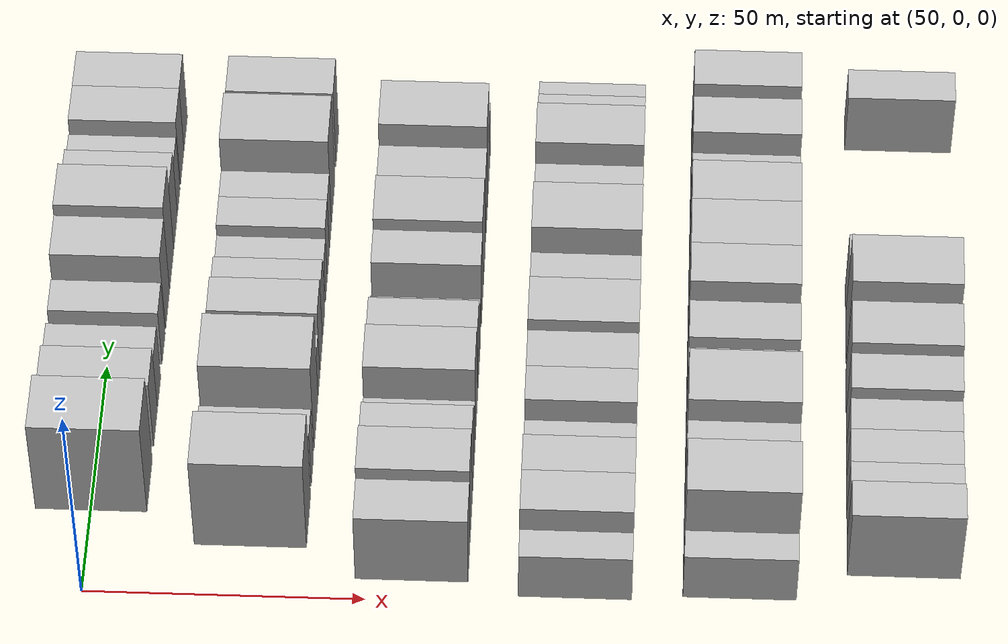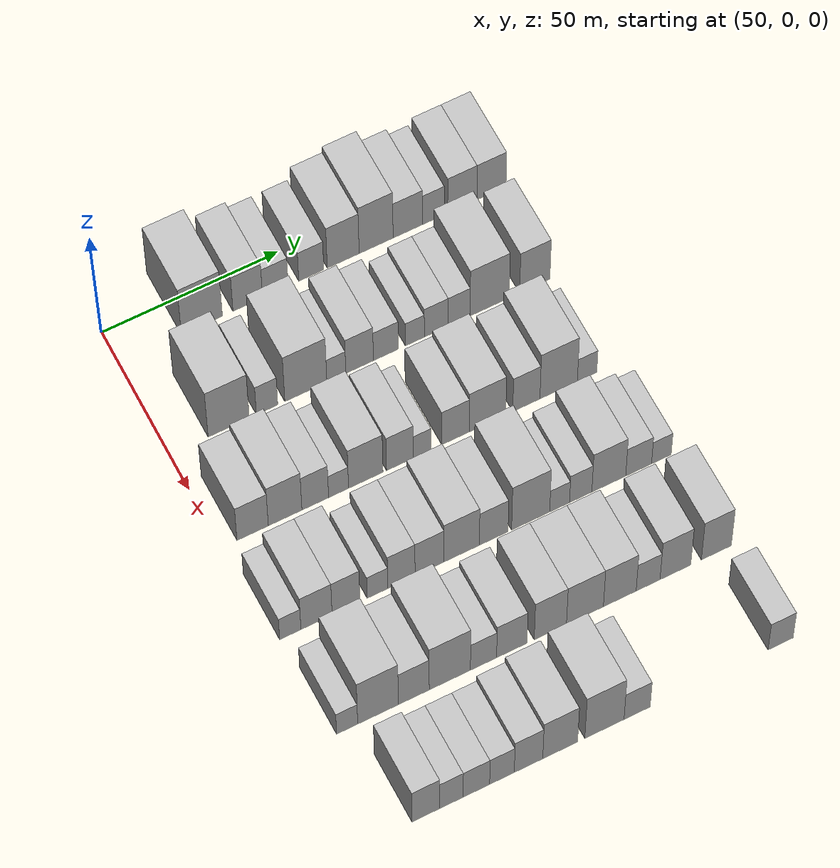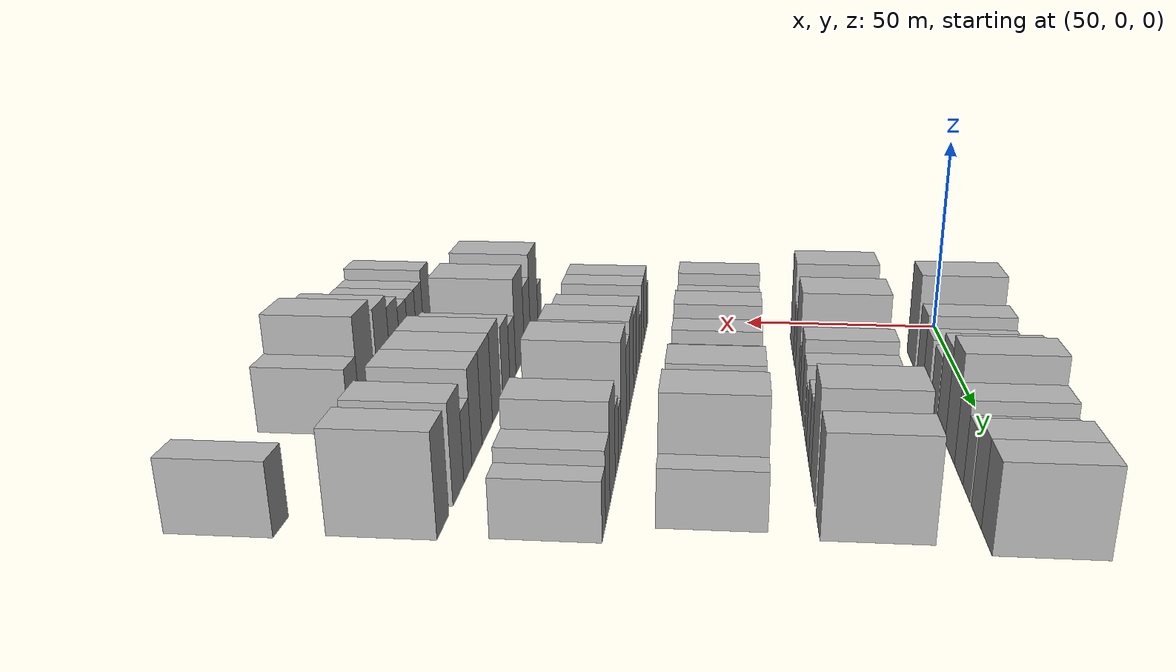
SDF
<sdf version="1.6">
 <world name="default">
  <model name="building_53">
   <static>1</static>
   <pose>50.0000 23.4272 0 0.000000 0.000000 0.000000</pose>
   <link name="link">
    <pose>0 0 12.00 0 0 0</pose>
    <collision name="collision"><geometry><box><size>20.0000 11.5989 24.0000</size></box></geometry></collision>
    <visual name="visual">
     <cast_shadows>0</cast_shadows>
     <geometry><box><size>20.0000 11.5989 24.0000</size></box></geometry>
     <material>
      <script>
       <uri>model://HANNAS_wall/materials/scripts</uri>
       <uri>model://HANNAS_wall/materials/textures</uri>
       <name>vrc/HANNAS_wall</name>
      </script>
     </material>
    </visual>
   </link>
  </model>
  <model name="building_54">
   <static>1</static>
   <pose>50.0000 36.4297 0 0.000000 0.000000 0.000000</pose>
   <link name="link">
    <pose>0 0 9.00 0 0 0</pose>
    <collision name="collision"><geometry><box><size>20.0000 8.4061 18.0000</size></box></geometry></collision>
    <visual name="visual">
     <cast_shadows>0</cast_shadows>
     <geometry><box><size>20.0000 8.4061 18.0000</size></box></geometry>
     <material>
      <script>
       <uri>model://HANNAS_wall/materials/scripts</uri>
       <uri>model://HANNAS_wall/materials/textures</uri>
       <name>vrc/HANNAS_wall</name>
      </script>
     </material>
    </visual>
   </link>
  </model>
  <model name="building_55">
   <static>1</static>
   <pose>50.0000 44.2950 0 0.000000 0.000000 0.000000</pose>
   <link name="link">
    <pose>0 0 7.50 0 0 0</pose>
    <collision name="collision"><geometry><box><size>20.0000 7.3245 15.0000</size></box></geometry></collision>
    <visual name="visual">
     <cast_shadows>0</cast_shadows>
     <geometry><box><size>20.0000 7.3245 15.0000</size></box></geometry>
     <material>
      <script>
       <uri>model://HANNAS_wall/materials/scripts</uri>
       <uri>model://HANNAS_wall/materials/textures</uri>
       <name>vrc/HANNAS_wall</name>
      </script>
     </material>
    </visual>
   </link>
  </model>
  <model name="building_56">
   <static>1</static>
   <pose>50.0000 54.5330 0 0.000000 0.000000 0.000000</pose>
   <link name="link">
    <pose>0 0 7.50 0 0 0</pose>
    <collision name="collision"><geometry><box><size>20.0000 7.1515 15.0000</size></box></geometry></collision>
    <visual name="visual">
     <cast_shadows>0</cast_shadows>
     <geometry><box><size>20.0000 7.1515 15.0000</size></box></geometry>
     <material>
      <script>
       <uri>model://HANNAS_wall/materials/scripts</uri>
       <uri>model://HANNAS_wall/materials/textures</uri>
       <name>vrc/HANNAS_wall</name>
      </script>
     </material>
    </visual>
   </link>
  </model>
  <model name="building_57">
   <static>1</static>
   <pose>50.0000 63.6788 0 0.000000 0.000000 0.000000</pose>
   <link name="link">
    <pose>0 0 10.50 0 0 0</pose>
    <collision name="collision"><geometry><box><size>20.0000 9.1401 21.0000</size></box></geometry></collision>
    <visual name="visual">
     <cast_shadows>0</cast_shadows>
     <geometry><box><size>20.0000 9.1401 21.0000</size></box></geometry>
     <material>
      <script>
       <uri>model://HANNAS_wall/materials/scripts</uri>
       <uri>model://HANNAS_wall/materials/textures</uri>
       <name>vrc/HANNAS_wall</name>
      </script>
     </material>
    </visual>
   </link>
  </model>
  <model name="building_58">
   <static>1</static>
   <pose>50.0000 73.1311 0 0.000000 0.000000 0.000000</pose>
   <link name="link">
    <pose>0 0 12.00 0 0 0</pose>
    <collision name="collision"><geometry><box><size>20.0000 9.7645 24.0000</size></box></geometry></collision>
    <visual name="visual">
     <cast_shadows>0</cast_shadows>
     <geometry><box><size>20.0000 9.7645 24.0000</size></box></geometry>
     <material>
      <script>
       <uri>model://HANNAS_wall/materials/scripts</uri>
       <uri>model://HANNAS_wall/materials/textures</uri>
       <name>vrc/HANNAS_wall</name>
      </script>
     </material>
    </visual>
   </link>
  </model>
  <model name="building_59">
   <static>1</static>
   <pose>50.0000 82.2472 0 0.000000 0.000000 0.000000</pose>
   <link name="link">
    <pose>0 0 9.00 0 0 0</pose>
    <collision name="collision"><geometry><box><size>20.0000 8.4677 18.0000</size></box></geometry></collision>
    <visual name="visual">
     <cast_shadows>0</cast_shadows>
     <geometry><box><size>20.0000 8.4677 18.0000</size></box></geometry>
     <material>
      <script>
       <uri>model://HANNAS_wall/materials/scripts</uri>
       <uri>model://HANNAS_wall/materials/textures</uri>
       <name>vrc/HANNAS_wall</name>
      </script>
     </material>
    </visual>
   </link>
  </model>
  <model name="building_60">
   <static>1</static>
   <pose>50.0000 89.6188 0 0.000000 0.000000 0.000000</pose>
   <link name="link">
    <pose>0 0 7.50 0 0 0</pose>
    <collision name="collision"><geometry><box><size>20.0000 6.2755 15.0000</size></box></geometry></collision>
    <visual name="visual">
     <cast_shadows>0</cast_shadows>
     <geometry><box><size>20.0000 6.2755 15.0000</size></box></geometry>
     <material>
      <script>
       <uri>model://HANNAS_wall/materials/scripts</uri>
       <uri>model://HANNAS_wall/materials/textures</uri>
       <name>vrc/HANNAS_wall</name>
      </script>
     </material>
    </visual>
   </link>
  </model>
  <model name="building_61">
   <static>1</static>
   <pose>50.0000 97.9870 0 0.000000 0.000000 0.000000</pose>
   <link name="link">
    <pose>0 0 9.00 0 0 0</pose>
    <collision name="collision"><geometry><box><size>20.0000 8.4609 18.0000</size></box></geometry></collision>
    <visual name="visual">
     <cast_shadows>0</cast_shadows>
     <geometry><box><size>20.0000 8.4609 18.0000</size></box></geometry>
     <material>
      <script>
       <uri>model://HANNAS_wall/materials/scripts</uri>
       <uri>model://HANNAS_wall/materials/textures</uri>
       <name>vrc/HANNAS_wall</name>
      </script>
     </material>
    </visual>
   </link>
  </model>
  <model name="building_62">
   <static>1</static>
   <pose>50.0000 106.4365 0 0.000000 0.000000 0.000000</pose>
   <link name="link">
    <pose>0 0 9.00 0 0 0</pose>
    <collision name="collision"><geometry><box><size>20.0000 8.4380 18.0000</size></box></geometry></collision>
    <visual name="visual">
     <cast_shadows>0</cast_shadows>
     <geometry><box><size>20.0000 8.4380 18.0000</size></box></geometry>
     <material>
      <script>
       <uri>model://HANNAS_wall/materials/scripts</uri>
       <uri>model://HANNAS_wall/materials/textures</uri>
       <name>vrc/HANNAS_wall</name>
      </script>
     </material>
    </visual>
   </link>
  </model>
  <model name="building_165">
   <static>1</static>
   <pose>79.0000 16.5833 0 0.000000 0.000000 0.000000</pose>
   <link name="link">
    <pose>0 0 12.00 0 0 0</pose>
    <collision name="collision"><geometry><box><size>20.0000 11.5537 24.0000</size></box></geometry></collision>
    <visual name="visual">
     <cast_shadows>0</cast_shadows>
     <geometry><box><size>20.0000 11.5537 24.0000</size></box></geometry>
     <material>
      <script>
       <uri>model://HANNAS_wall/materials/scripts</uri>
       <uri>model://HANNAS_wall/materials/textures</uri>
       <name>vrc/HANNAS_wall</name>
      </script>
     </material>
    </visual>
   </link>
  </model>
  <model name="building_166">
   <static>1</static>
   <pose>79.0000 27.3683 0 0.000000 0.000000 0.000000</pose>
   <link name="link">
    <pose>0 0 7.50 0 0 0</pose>
    <collision name="collision"><geometry><box><size>20.0000 6.0164 15.0000</size></box></geometry></collision>
    <visual name="visual">
     <cast_shadows>0</cast_shadows>
     <geometry><box><size>20.0000 6.0164 15.0000</size></box></geometry>
     <material>
      <script>
       <uri>model://HANNAS_wall/materials/scripts</uri>
       <uri>model://HANNAS_wall/materials/textures</uri>
       <name>vrc/HANNAS_wall</name>
      </script>
     </material>
    </visual>
   </link>
  </model>
  <model name="building_167">
   <static>1</static>
   <pose>79.0000 38.3132 0 0.000000 0.000000 0.000000</pose>
   <link name="link">
    <pose>0 0 12.00 0 0 0</pose>
    <collision name="collision"><geometry><box><size>20.0000 11.8733 24.0000</size></box></geometry></collision>
    <visual name="visual">
     <cast_shadows>0</cast_shadows>
     <geometry><box><size>20.0000 11.8733 24.0000</size></box></geometry>
     <material>
      <script>
       <uri>model://HANNAS_wall/materials/scripts</uri>
       <uri>model://HANNAS_wall/materials/textures</uri>
       <name>vrc/HANNAS_wall</name>
      </script>
     </material>
    </visual>
   </link>
  </model>
  <model name="building_168">
   <static>1</static>
   <pose>79.0000 46.9376 0 0.000000 0.000000 0.000000</pose>
   <link name="link">
    <pose>0 0 6.00 0 0 0</pose>
    <collision name="collision"><geometry><box><size>20.0000 5.3756 12.0000</size></box></geometry></collision>
    <visual name="visual">
     <cast_shadows>0</cast_shadows>
     <geometry><box><size>20.0000 5.3756 12.0000</size></box></geometry>
     <material>
      <script>
       <uri>model://HANNAS_wall/materials/scripts</uri>
       <uri>model://HANNAS_wall/materials/textures</uri>
       <name>vrc/HANNAS_wall</name>
      </script>
     </material>
    </visual>
   </link>
  </model>
  <model name="building_169">
   <static>1</static>
   <pose>79.0000 53.5484 0 0.000000 0.000000 0.000000</pose>
   <link name="link">
    <pose>0 0 9.00 0 0 0</pose>
    <collision name="collision"><geometry><box><size>20.0000 7.8459 18.0000</size></box></geometry></collision>
    <visual name="visual">
     <cast_shadows>0</cast_shadows>
     <geometry><box><size>20.0000 7.8459 18.0000</size></box></geometry>
     <material>
      <script>
       <uri>model://HANNAS_wall/materials/scripts</uri>
       <uri>model://HANNAS_wall/materials/textures</uri>
       <name>vrc/HANNAS_wall</name>
      </script>
     </material>
    </visual>
   </link>
  </model>
  <model name="building_170">
   <static>1</static>
   <pose>79.0000 61.0159 0 0.000000 0.000000 0.000000</pose>
   <link name="link">
    <pose>0 0 7.50 0 0 0</pose>
    <collision name="collision"><geometry><box><size>20.0000 7.0892 15.0000</size></box></geometry></collision>
    <visual name="visual">
     <cast_shadows>0</cast_shadows>
     <geometry><box><size>20.0000 7.0892 15.0000</size></box></geometry>
     <material>
      <script>
       <uri>model://HANNAS_wall/materials/scripts</uri>
       <uri>model://HANNAS_wall/materials/textures</uri>
       <name>vrc/HANNAS_wall</name>
      </script>
     </material>
    </visual>
   </link>
  </model>
  <model name="building_171">
   <static>1</static>
   <pose>79.0000 69.2675 0 0.000000 0.000000 0.000000</pose>
   <link name="link">
    <pose>0 0 6.00 0 0 0</pose>
    <collision name="collision"><geometry><box><size>20.0000 5.4140 12.0000</size></box></geometry></collision>
    <visual name="visual">
     <cast_shadows>0</cast_shadows>
     <geometry><box><size>20.0000 5.4140 12.0000</size></box></geometry>
     <material>
      <script>
       <uri>model://HANNAS_wall/materials/scripts</uri>
       <uri>model://HANNAS_wall/materials/textures</uri>
       <name>vrc/HANNAS_wall</name>
      </script>
     </material>
    </visual>
   </link>
  </model>
  <model name="building_172">
   <static>1</static>
   <pose>79.0000 75.3953 0 0.000000 0.000000 0.000000</pose>
   <link name="link">
    <pose>0 0 7.50 0 0 0</pose>
    <collision name="collision"><geometry><box><size>20.0000 6.8417 15.0000</size></box></geometry></collision>
    <visual name="visual">
     <cast_shadows>0</cast_shadows>
     <geometry><box><size>20.0000 6.8417 15.0000</size></box></geometry>
     <material>
      <script>
       <uri>model://HANNAS_wall/materials/scripts</uri>
       <uri>model://HANNAS_wall/materials/textures</uri>
       <name>vrc/HANNAS_wall</name>
      </script>
     </material>
    </visual>
   </link>
  </model>
  <model name="building_173">
   <static>1</static>
   <pose>79.0000 81.9405 0 0.000000 0.000000 0.000000</pose>
   <link name="link">
    <pose>0 0 7.50 0 0 0</pose>
    <collision name="collision"><geometry><box><size>20.0000 6.2487 15.0000</size></box></geometry></collision>
    <visual name="visual">
     <cast_shadows>0</cast_shadows>
     <geometry><box><size>20.0000 6.2487 15.0000</size></box></geometry>
     <material>
      <script>
       <uri>model://HANNAS_wall/materials/scripts</uri>
       <uri>model://HANNAS_wall/materials/textures</uri>
       <name>vrc/HANNAS_wall</name>
      </script>
     </material>
    </visual>
   </link>
  </model>
  <model name="building_174">
   <static>1</static>
   <pose>79.0000 90.6792 0 0.000000 0.000000 0.000000</pose>
   <link name="link">
    <pose>0 0 12.00 0 0 0</pose>
    <collision name="collision"><geometry><box><size>20.0000 11.2288 24.0000</size></box></geometry></collision>
    <visual name="visual">
     <cast_shadows>0</cast_shadows>
     <geometry><box><size>20.0000 11.2288 24.0000</size></box></geometry>
     <material>
      <script>
       <uri>model://HANNAS_wall/materials/scripts</uri>
       <uri>model://HANNAS_wall/materials/textures</uri>
       <name>vrc/HANNAS_wall</name>
      </script>
     </material>
    </visual>
   </link>
  </model>
  <model name="building_175">
   <static>1</static>
   <pose>79.0000 103.6485 0 0.000000 0.000000 0.000000</pose>
   <link name="link">
    <pose>0 0 10.50 0 0 0</pose>
    <collision name="collision"><geometry><box><size>20.0000 8.7099 21.0000</size></box></geometry></collision>
    <visual name="visual">
     <cast_shadows>0</cast_shadows>
     <geometry><box><size>20.0000 8.7099 21.0000</size></box></geometry>
     <material>
      <script>
       <uri>model://HANNAS_wall/materials/scripts</uri>
       <uri>model://HANNAS_wall/materials/textures</uri>
       <name>vrc/HANNAS_wall</name>
      </script>
     </material>
    </visual>
   </link>
  </model>
  <model name="building_283">
   <static>1</static>
   <pose>108.0000 8.7991 0 0.000000 0.000000 0.000000</pose>
   <link name="link">
    <pose>0 0 9.00 0 0 0</pose>
    <collision name="collision"><geometry><box><size>20.0000 8.7271 18.0000</size></box></geometry></collision>
    <visual name="visual">
     <cast_shadows>0</cast_shadows>
     <geometry><box><size>20.0000 8.7271 18.0000</size></box></geometry>
     <material>
      <script>
       <uri>model://HANNAS_wall/materials/scripts</uri>
       <uri>model://HANNAS_wall/materials/textures</uri>
       <name>vrc/HANNAS_wall</name>
      </script>
     </material>
    </visual>
   </link>
  </model>
  <model name="building_284">
   <static>1</static>
   <pose>108.0000 17.8478 0 0.000000 0.000000 0.000000</pose>
   <link name="link">
    <pose>0 0 10.50 0 0 0</pose>
    <collision name="collision"><geometry><box><size>20.0000 9.3703 21.0000</size></box></geometry></collision>
    <visual name="visual">
     <cast_shadows>0</cast_shadows>
     <geometry><box><size>20.0000 9.3703 21.0000</size></box></geometry>
     <material>
      <script>
       <uri>model://HANNAS_wall/materials/scripts</uri>
       <uri>model://HANNAS_wall/materials/textures</uri>
       <name>vrc/HANNAS_wall</name>
      </script>
     </material>
    </visual>
   </link>
  </model>
  <model name="building_285">
   <static>1</static>
   <pose>108.0000 26.2696 0 0.000000 0.000000 0.000000</pose>
   <link name="link">
    <pose>0 0 9.00 0 0 0</pose>
    <collision name="collision"><geometry><box><size>20.0000 7.4734 18.0000</size></box></geometry></collision>
    <visual name="visual">
     <cast_shadows>0</cast_shadows>
     <geometry><box><size>20.0000 7.4734 18.0000</size></box></geometry>
     <material>
      <script>
       <uri>model://HANNAS_wall/materials/scripts</uri>
       <uri>model://HANNAS_wall/materials/textures</uri>
       <name>vrc/HANNAS_wall</name>
      </script>
     </material>
    </visual>
   </link>
  </model>
  <model name="building_286">
   <static>1</static>
   <pose>108.0000 32.7994 0 0.000000 0.000000 0.000000</pose>
   <link name="link">
    <pose>0 0 6.00 0 0 0</pose>
    <collision name="collision"><geometry><box><size>20.0000 5.5861 12.0000</size></box></geometry></collision>
    <visual name="visual">
     <cast_shadows>0</cast_shadows>
     <geometry><box><size>20.0000 5.5861 12.0000</size></box></geometry>
     <material>
      <script>
       <uri>model://HANNAS_wall/materials/scripts</uri>
       <uri>model://HANNAS_wall/materials/textures</uri>
       <name>vrc/HANNAS_wall</name>
      </script>
     </material>
    </visual>
   </link>
  </model>
  <model name="building_287">
   <static>1</static>
   <pose>108.0000 40.4298 0 0.000000 0.000000 0.000000</pose>
   <link name="link">
    <pose>0 0 10.50 0 0 0</pose>
    <collision name="collision"><geometry><box><size>20.0000 9.6749 21.0000</size></box></geometry></collision>
    <visual name="visual">
     <cast_shadows>0</cast_shadows>
     <geometry><box><size>20.0000 9.6749 21.0000</size></box></geometry>
     <material>
      <script>
       <uri>model://HANNAS_wall/materials/scripts</uri>
       <uri>model://HANNAS_wall/materials/textures</uri>
       <name>vrc/HANNAS_wall</name>
      </script>
     </material>
    </visual>
   </link>
  </model>
  <model name="building_288">
   <static>1</static>
   <pose>108.0000 50.0367 0 0.000000 0.000000 0.000000</pose>
   <link name="link">
    <pose>0 0 9.00 0 0 0</pose>
    <collision name="collision"><geometry><box><size>20.0000 7.5389 18.0000</size></box></geometry></collision>
    <visual name="visual">
     <cast_shadows>0</cast_shadows>
     <geometry><box><size>20.0000 7.5389 18.0000</size></box></geometry>
     <material>
      <script>
       <uri>model://HANNAS_wall/materials/scripts</uri>
       <uri>model://HANNAS_wall/materials/textures</uri>
       <name>vrc/HANNAS_wall</name>
      </script>
     </material>
    </visual>
   </link>
  </model>
  <model name="building_289">
   <static>1</static>
   <pose>108.0000 56.3267 0 0.000000 0.000000 0.000000</pose>
   <link name="link">
    <pose>0 0 6.00 0 0 0</pose>
    <collision name="collision"><geometry><box><size>20.0000 5.0412 12.0000</size></box></geometry></collision>
    <visual name="visual">
     <cast_shadows>0</cast_shadows>
     <geometry><box><size>20.0000 5.0412 12.0000</size></box></geometry>
     <material>
      <script>
       <uri>model://HANNAS_wall/materials/scripts</uri>
       <uri>model://HANNAS_wall/materials/textures</uri>
       <name>vrc/HANNAS_wall</name>
      </script>
     </material>
    </visual>
   </link>
  </model>
  <model name="building_290">
   <static>1</static>
   <pose>108.0000 65.7313 0 0.000000 0.000000 0.000000</pose>
   <link name="link">
    <pose>0 0 9.00 0 0 0</pose>
    <collision name="collision"><geometry><box><size>20.0000 7.7679 18.0000</size></box></geometry></collision>
    <visual name="visual">
     <cast_shadows>0</cast_shadows>
     <geometry><box><size>20.0000 7.7679 18.0000</size></box></geometry>
     <material>
      <script>
       <uri>model://HANNAS_wall/materials/scripts</uri>
       <uri>model://HANNAS_wall/materials/textures</uri>
       <name>vrc/HANNAS_wall</name>
      </script>
     </material>
    </visual>
   </link>
  </model>
  <model name="building_291">
   <static>1</static>
   <pose>108.0000 74.8093 0 0.000000 0.000000 0.000000</pose>
   <link name="link">
    <pose>0 0 10.50 0 0 0</pose>
    <collision name="collision"><geometry><box><size>20.0000 10.3881 21.0000</size></box></geometry></collision>
    <visual name="visual">
     <cast_shadows>0</cast_shadows>
     <geometry><box><size>20.0000 10.3881 21.0000</size></box></geometry>
     <material>
      <script>
       <uri>model://HANNAS_wall/materials/scripts</uri>
       <uri>model://HANNAS_wall/materials/textures</uri>
       <name>vrc/HANNAS_wall</name>
      </script>
     </material>
    </visual>
   </link>
  </model>
  <model name="building_292">
   <static>1</static>
   <pose>108.0000 85.8697 0 0.000000 0.000000 0.000000</pose>
   <link name="link">
    <pose>0 0 9.00 0 0 0</pose>
    <collision name="collision"><geometry><box><size>20.0000 7.7328 18.0000</size></box></geometry></collision>
    <visual name="visual">
     <cast_shadows>0</cast_shadows>
     <geometry><box><size>20.0000 7.7328 18.0000</size></box></geometry>
     <material>
      <script>
       <uri>model://HANNAS_wall/materials/scripts</uri>
       <uri>model://HANNAS_wall/materials/textures</uri>
       <name>vrc/HANNAS_wall</name>
      </script>
     </material>
    </visual>
   </link>
  </model>
  <model name="building_293">
   <static>1</static>
   <pose>108.0000 95.0829 0 0.000000 0.000000 0.000000</pose>
   <link name="link">
    <pose>0 0 12.00 0 0 0</pose>
    <collision name="collision"><geometry><box><size>20.0000 10.6936 24.0000</size></box></geometry></collision>
    <visual name="visual">
     <cast_shadows>0</cast_shadows>
     <geometry><box><size>20.0000 10.6936 24.0000</size></box></geometry>
     <material>
      <script>
       <uri>model://HANNAS_wall/materials/scripts</uri>
       <uri>model://HANNAS_wall/materials/textures</uri>
       <name>vrc/HANNAS_wall</name>
      </script>
     </material>
    </visual>
   </link>
  </model>
  <model name="building_294">
   <static>1</static>
   <pose>108.0000 103.2182 0 0.000000 0.000000 0.000000</pose>
   <link name="link">
    <pose>0 0 6.00 0 0 0</pose>
    <collision name="collision"><geometry><box><size>20.0000 5.5770 12.0000</size></box></geometry></collision>
    <visual name="visual">
     <cast_shadows>0</cast_shadows>
     <geometry><box><size>20.0000 5.5770 12.0000</size></box></geometry>
     <material>
      <script>
       <uri>model://HANNAS_wall/materials/scripts</uri>
       <uri>model://HANNAS_wall/materials/textures</uri>
       <name>vrc/HANNAS_wall</name>
      </script>
     </material>
    </visual>
   </link>
  </model>
  <model name="building_403">
   <static>1</static>
   <pose>137.0000 4.6618 0 0.000000 0.000000 0.000000</pose>
   <link name="link">
    <pose>0 0 6.00 0 0 0</pose>
    <collision name="collision"><geometry><box><size>20.0000 5.8761 12.0000</size></box></geometry></collision>
    <visual name="visual">
     <cast_shadows>0</cast_shadows>
     <geometry><box><size>20.0000 5.8761 12.0000</size></box></geometry>
     <material>
      <script>
       <uri>model://HANNAS_wall/materials/scripts</uri>
       <uri>model://HANNAS_wall/materials/textures</uri>
       <name>vrc/HANNAS_wall</name>
      </script>
     </material>
    </visual>
   </link>
  </model>
  <model name="building_404">
   <static>1</static>
   <pose>137.0000 11.9137 0 0.000000 0.000000 0.000000</pose>
   <link name="link">
    <pose>0 0 9.00 0 0 0</pose>
    <collision name="collision"><geometry><box><size>20.0000 8.6278 18.0000</size></box></geometry></collision>
    <visual name="visual">
     <cast_shadows>0</cast_shadows>
     <geometry><box><size>20.0000 8.6278 18.0000</size></box></geometry>
     <material>
      <script>
       <uri>model://HANNAS_wall/materials/scripts</uri>
       <uri>model://HANNAS_wall/materials/textures</uri>
       <name>vrc/HANNAS_wall</name>
      </script>
     </material>
    </visual>
   </link>
  </model>
  <model name="building_405">
   <static>1</static>
   <pose>137.0000 20.0993 0 0.000000 0.000000 0.000000</pose>
   <link name="link">
    <pose>0 0 9.00 0 0 0</pose>
    <collision name="collision"><geometry><box><size>20.0000 7.7434 18.0000</size></box></geometry></collision>
    <visual name="visual">
     <cast_shadows>0</cast_shadows>
     <geometry><box><size>20.0000 7.7434 18.0000</size></box></geometry>
     <material>
      <script>
       <uri>model://HANNAS_wall/materials/scripts</uri>
       <uri>model://HANNAS_wall/materials/textures</uri>
       <name>vrc/HANNAS_wall</name>
      </script>
     </material>
    </visual>
   </link>
  </model>
  <model name="building_406">
   <static>1</static>
   <pose>137.0000 28.8416 0 0.000000 0.000000 0.000000</pose>
   <link name="link">
    <pose>0 0 6.00 0 0 0</pose>
    <collision name="collision"><geometry><box><size>20.0000 5.7413 12.0000</size></box></geometry></collision>
    <visual name="visual">
     <cast_shadows>0</cast_shadows>
     <geometry><box><size>20.0000 5.7413 12.0000</size></box></geometry>
     <material>
      <script>
       <uri>model://HANNAS_wall/materials/scripts</uri>
       <uri>model://HANNAS_wall/materials/textures</uri>
       <name>vrc/HANNAS_wall</name>
      </script>
     </material>
    </visual>
   </link>
  </model>
  <model name="building_407">
   <static>1</static>
   <pose>137.0000 35.5147 0 0.000000 0.000000 0.000000</pose>
   <link name="link">
    <pose>0 0 9.00 0 0 0</pose>
    <collision name="collision"><geometry><box><size>20.0000 7.6049 18.0000</size></box></geometry></collision>
    <visual name="visual">
     <cast_shadows>0</cast_shadows>
     <geometry><box><size>20.0000 7.6049 18.0000</size></box></geometry>
     <material>
      <script>
       <uri>model://HANNAS_wall/materials/scripts</uri>
       <uri>model://HANNAS_wall/materials/textures</uri>
       <name>vrc/HANNAS_wall</name>
      </script>
     </material>
    </visual>
   </link>
  </model>
  <model name="building_408">
   <static>1</static>
   <pose>137.0000 43.3640 0 0.000000 0.000000 0.000000</pose>
   <link name="link">
    <pose>0 0 9.00 0 0 0</pose>
    <collision name="collision"><geometry><box><size>20.0000 8.0937 18.0000</size></box></geometry></collision>
    <visual name="visual">
     <cast_shadows>0</cast_shadows>
     <geometry><box><size>20.0000 8.0937 18.0000</size></box></geometry>
     <material>
      <script>
       <uri>model://HANNAS_wall/materials/scripts</uri>
       <uri>model://HANNAS_wall/materials/textures</uri>
       <name>vrc/HANNAS_wall</name>
      </script>
     </material>
    </visual>
   </link>
  </model>
  <model name="building_409">
   <static>1</static>
   <pose>137.0000 52.3573 0 0.000000 0.000000 0.000000</pose>
   <link name="link">
    <pose>0 0 10.50 0 0 0</pose>
    <collision name="collision"><geometry><box><size>20.0000 9.8931 21.0000</size></box></geometry></collision>
    <visual name="visual">
     <cast_shadows>0</cast_shadows>
     <geometry><box><size>20.0000 9.8931 21.0000</size></box></geometry>
     <material>
      <script>
       <uri>model://HANNAS_wall/materials/scripts</uri>
       <uri>model://HANNAS_wall/materials/textures</uri>
       <name>vrc/HANNAS_wall</name>
      </script>
     </material>
    </visual>
   </link>
  </model>
  <model name="building_410">
   <static>1</static>
   <pose>137.0000 61.3296 0 0.000000 0.000000 0.000000</pose>
   <link name="link">
    <pose>0 0 9.00 0 0 0</pose>
    <collision name="collision"><geometry><box><size>20.0000 8.0513 18.0000</size></box></geometry></collision>
    <visual name="visual">
     <cast_shadows>0</cast_shadows>
     <geometry><box><size>20.0000 8.0513 18.0000</size></box></geometry>
     <material>
      <script>
       <uri>model://HANNAS_wall/materials/scripts</uri>
       <uri>model://HANNAS_wall/materials/textures</uri>
       <name>vrc/HANNAS_wall</name>
      </script>
     </material>
    </visual>
   </link>
  </model>
  <model name="building_411">
   <static>1</static>
   <pose>137.0000 71.7255 0 0.000000 0.000000 0.000000</pose>
   <link name="link">
    <pose>0 0 12.00 0 0 0</pose>
    <collision name="collision"><geometry><box><size>20.0000 10.7406 24.0000</size></box></geometry></collision>
    <visual name="visual">
     <cast_shadows>0</cast_shadows>
     <geometry><box><size>20.0000 10.7406 24.0000</size></box></geometry>
     <material>
      <script>
       <uri>model://HANNAS_wall/materials/scripts</uri>
       <uri>model://HANNAS_wall/materials/textures</uri>
       <name>vrc/HANNAS_wall</name>
      </script>
     </material>
    </visual>
   </link>
  </model>
  <model name="building_412">
   <static>1</static>
   <pose>137.0000 79.8958 0 0.000000 0.000000 0.000000</pose>
   <link name="link">
    <pose>0 0 6.00 0 0 0</pose>
    <collision name="collision"><geometry><box><size>20.0000 5.6000 12.0000</size></box></geometry></collision>
    <visual name="visual">
     <cast_shadows>0</cast_shadows>
     <geometry><box><size>20.0000 5.6000 12.0000</size></box></geometry>
     <material>
      <script>
       <uri>model://HANNAS_wall/materials/scripts</uri>
       <uri>model://HANNAS_wall/materials/textures</uri>
       <name>vrc/HANNAS_wall</name>
      </script>
     </material>
    </visual>
   </link>
  </model>
  <model name="building_413">
   <static>1</static>
   <pose>137.0000 85.8580 0 0.000000 0.000000 0.000000</pose>
   <link name="link">
    <pose>0 0 7.50 0 0 0</pose>
    <collision name="collision"><geometry><box><size>20.0000 6.3245 15.0000</size></box></geometry></collision>
    <visual name="visual">
     <cast_shadows>0</cast_shadows>
     <geometry><box><size>20.0000 6.3245 15.0000</size></box></geometry>
     <material>
      <script>
       <uri>model://HANNAS_wall/materials/scripts</uri>
       <uri>model://HANNAS_wall/materials/textures</uri>
       <name>vrc/HANNAS_wall</name>
      </script>
     </material>
    </visual>
   </link>
  </model>
  <model name="building_414">
   <static>1</static>
   <pose>137.0000 93.8316 0 0.000000 0.000000 0.000000</pose>
   <link name="link">
    <pose>0 0 10.50 0 0 0</pose>
    <collision name="collision"><geometry><box><size>20.0000 9.6228 21.0000</size></box></geometry></collision>
    <visual name="visual">
     <cast_shadows>0</cast_shadows>
     <geometry><box><size>20.0000 9.6228 21.0000</size></box></geometry>
     <material>
      <script>
       <uri>model://HANNAS_wall/materials/scripts</uri>
       <uri>model://HANNAS_wall/materials/textures</uri>
       <name>vrc/HANNAS_wall</name>
      </script>
     </material>
    </visual>
   </link>
  </model>
  <model name="building_415">
   <static>1</static>
   <pose>137.0000 102.3237 0 0.000000 0.000000 0.000000</pose>
   <link name="link">
    <pose>0 0 7.50 0 0 0</pose>
    <collision name="collision"><geometry><box><size>20.0000 7.3614 15.0000</size></box></geometry></collision>
    <visual name="visual">
     <cast_shadows>0</cast_shadows>
     <geometry><box><size>20.0000 7.3614 15.0000</size></box></geometry>
     <material>
      <script>
       <uri>model://HANNAS_wall/materials/scripts</uri>
       <uri>model://HANNAS_wall/materials/textures</uri>
       <name>vrc/HANNAS_wall</name>
      </script>
     </material>
    </visual>
   </link>
  </model>
  <model name="building_416">
   <static>1</static>
   <pose>137.0000 108.8036 0 0.000000 0.000000 0.000000</pose>
   <link name="link">
    <pose>0 0 6.00 0 0 0</pose>
    <collision name="collision"><geometry><box><size>20.0000 5.5985 12.0000</size></box></geometry></collision>
    <visual name="visual">
     <cast_shadows>0</cast_shadows>
     <geometry><box><size>20.0000 5.5985 12.0000</size></box></geometry>
     <material>
      <script>
       <uri>model://HANNAS_wall/materials/scripts</uri>
       <uri>model://HANNAS_wall/materials/textures</uri>
       <name>vrc/HANNAS_wall</name>
      </script>
     </material>
    </visual>
   </link>
  </model>
  <model name="building_518">
   <static>1</static>
   <pose>166.0000 5.5942 0 0.000000 0.000000 0.000000</pose>
   <link name="link">
    <pose>0 0 6.00 0 0 0</pose>
    <collision name="collision"><geometry><box><size>20.0000 5.7966 12.0000</size></box></geometry></collision>
    <visual name="visual">
     <cast_shadows>0</cast_shadows>
     <geometry><box><size>20.0000 5.7966 12.0000</size></box></geometry>
     <material>
      <script>
       <uri>model://HANNAS_wall/materials/scripts</uri>
       <uri>model://HANNAS_wall/materials/textures</uri>
       <name>vrc/HANNAS_wall</name>
      </script>
     </material>
    </visual>
   </link>
  </model>
  <model name="building_519">
   <static>1</static>
   <pose>166.0000 14.0956 0 0.000000 0.000000 0.000000</pose>
   <link name="link">
    <pose>0 0 12.00 0 0 0</pose>
    <collision name="collision"><geometry><box><size>20.0000 11.2062 24.0000</size></box></geometry></collision>
    <visual name="visual">
     <cast_shadows>0</cast_shadows>
     <geometry><box><size>20.0000 11.2062 24.0000</size></box></geometry>
     <material>
      <script>
       <uri>model://HANNAS_wall/materials/scripts</uri>
       <uri>model://HANNAS_wall/materials/textures</uri>
       <name>vrc/HANNAS_wall</name>
      </script>
     </material>
    </visual>
   </link>
  </model>
  <model name="building_520">
   <static>1</static>
   <pose>166.0000 23.9539 0 0.000000 0.000000 0.000000</pose>
   <link name="link">
    <pose>0 0 9.00 0 0 0</pose>
    <collision name="collision"><geometry><box><size>20.0000 8.5105 18.0000</size></box></geometry></collision>
    <visual name="visual">
     <cast_shadows>0</cast_shadows>
     <geometry><box><size>20.0000 8.5105 18.0000</size></box></geometry>
     <material>
      <script>
       <uri>model://HANNAS_wall/materials/scripts</uri>
       <uri>model://HANNAS_wall/materials/textures</uri>
       <name>vrc/HANNAS_wall</name>
      </script>
     </material>
    </visual>
   </link>
  </model>
  <model name="building_521">
   <static>1</static>
   <pose>166.0000 33.9065 0 0.000000 0.000000 0.000000</pose>
   <link name="link">
    <pose>0 0 12.00 0 0 0</pose>
    <collision name="collision"><geometry><box><size>20.0000 11.3946 24.0000</size></box></geometry></collision>
    <visual name="visual">
     <cast_shadows>0</cast_shadows>
     <geometry><box><size>20.0000 11.3946 24.0000</size></box></geometry>
     <material>
      <script>
       <uri>model://HANNAS_wall/materials/scripts</uri>
       <uri>model://HANNAS_wall/materials/textures</uri>
       <name>vrc/HANNAS_wall</name>
      </script>
     </material>
    </visual>
   </link>
  </model>
  <model name="building_522">
   <static>1</static>
   <pose>166.0000 43.2404 0 0.000000 0.000000 0.000000</pose>
   <link name="link">
    <pose>0 0 7.50 0 0 0</pose>
    <collision name="collision"><geometry><box><size>20.0000 7.2733 15.0000</size></box></geometry></collision>
    <visual name="visual">
     <cast_shadows>0</cast_shadows>
     <geometry><box><size>20.0000 7.2733 15.0000</size></box></geometry>
     <material>
      <script>
       <uri>model://HANNAS_wall/materials/scripts</uri>
       <uri>model://HANNAS_wall/materials/textures</uri>
       <name>vrc/HANNAS_wall</name>
      </script>
     </material>
    </visual>
   </link>
  </model>
  <model name="building_523">
   <static>1</static>
   <pose>166.0000 51.1141 0 0.000000 0.000000 0.000000</pose>
   <link name="link">
    <pose>0 0 9.00 0 0 0</pose>
    <collision name="collision"><geometry><box><size>20.0000 8.4742 18.0000</size></box></geometry></collision>
    <visual name="visual">
     <cast_shadows>0</cast_shadows>
     <geometry><box><size>20.0000 8.4742 18.0000</size></box></geometry>
     <material>
      <script>
       <uri>model://HANNAS_wall/materials/scripts</uri>
       <uri>model://HANNAS_wall/materials/textures</uri>
       <name>vrc/HANNAS_wall</name>
      </script>
     </material>
    </visual>
   </link>
  </model>
  <model name="building_524">
   <static>1</static>
   <pose>166.0000 61.8561 0 0.000000 0.000000 0.000000</pose>
   <link name="link">
    <pose>0 0 10.50 0 0 0</pose>
    <collision name="collision"><geometry><box><size>20.0000 9.0097 21.0000</size></box></geometry></collision>
    <visual name="visual">
     <cast_shadows>0</cast_shadows>
     <geometry><box><size>20.0000 9.0097 21.0000</size></box></geometry>
     <material>
      <script>
       <uri>model://HANNAS_wall/materials/scripts</uri>
       <uri>model://HANNAS_wall/materials/textures</uri>
       <name>vrc/HANNAS_wall</name>
      </script>
     </material>
    </visual>
   </link>
  </model>
  <model name="building_525">
   <static>1</static>
   <pose>166.0000 71.5371 0 0.000000 0.000000 0.000000</pose>
   <link name="link">
    <pose>0 0 10.50 0 0 0</pose>
    <collision name="collision"><geometry><box><size>20.0000 10.3523 21.0000</size></box></geometry></collision>
    <visual name="visual">
     <cast_shadows>0</cast_shadows>
     <geometry><box><size>20.0000 10.3523 21.0000</size></box></geometry>
     <material>
      <script>
       <uri>model://HANNAS_wall/materials/scripts</uri>
       <uri>model://HANNAS_wall/materials/textures</uri>
       <name>vrc/HANNAS_wall</name>
      </script>
     </material>
    </visual>
   </link>
  </model>
  <model name="building_526">
   <static>1</static>
   <pose>166.0000 81.3130 0 0.000000 0.000000 0.000000</pose>
   <link name="link">
    <pose>0 0 10.50 0 0 0</pose>
    <collision name="collision"><geometry><box><size>20.0000 9.1996 21.0000</size></box></geometry></collision>
    <visual name="visual">
     <cast_shadows>0</cast_shadows>
     <geometry><box><size>20.0000 9.1996 21.0000</size></box></geometry>
     <material>
      <script>
       <uri>model://HANNAS_wall/materials/scripts</uri>
       <uri>model://HANNAS_wall/materials/textures</uri>
       <name>vrc/HANNAS_wall</name>
      </script>
     </material>
    </visual>
   </link>
  </model>
  <model name="building_527">
   <static>1</static>
   <pose>166.0000 89.2805 0 0.000000 0.000000 0.000000</pose>
   <link name="link">
    <pose>0 0 7.50 0 0 0</pose>
    <collision name="collision"><geometry><box><size>20.0000 6.7354 15.0000</size></box></geometry></collision>
    <visual name="visual">
     <cast_shadows>0</cast_shadows>
     <geometry><box><size>20.0000 6.7354 15.0000</size></box></geometry>
     <material>
      <script>
       <uri>model://HANNAS_wall/materials/scripts</uri>
       <uri>model://HANNAS_wall/materials/textures</uri>
       <name>vrc/HANNAS_wall</name>
      </script>
     </material>
    </visual>
   </link>
  </model>
  <model name="building_528">
   <static>1</static>
   <pose>166.0000 96.9867 0 0.000000 0.000000 0.000000</pose>
   <link name="link">
    <pose>0 0 10.50 0 0 0</pose>
    <collision name="collision"><geometry><box><size>20.0000 8.6770 21.0000</size></box></geometry></collision>
    <visual name="visual">
     <cast_shadows>0</cast_shadows>
     <geometry><box><size>20.0000 8.6770 21.0000</size></box></geometry>
     <material>
      <script>
       <uri>model://HANNAS_wall/materials/scripts</uri>
       <uri>model://HANNAS_wall/materials/textures</uri>
       <name>vrc/HANNAS_wall</name>
      </script>
     </material>
    </visual>
   </link>
  </model>
  <model name="building_529">
   <static>1</static>
   <pose>166.0000 108.5662 0 0.000000 0.000000 0.000000</pose>
   <link name="link">
    <pose>0 0 10.50 0 0 0</pose>
    <collision name="collision"><geometry><box><size>20.0000 8.4819 21.0000</size></box></geometry></collision>
    <visual name="visual">
     <cast_shadows>0</cast_shadows>
     <geometry><box><size>20.0000 8.4819 21.0000</size></box></geometry>
     <material>
      <script>
       <uri>model://HANNAS_wall/materials/scripts</uri>
       <uri>model://HANNAS_wall/materials/textures</uri>
       <name>vrc/HANNAS_wall</name>
      </script>
     </material>
    </visual>
   </link>
  </model>
  <model name="building_631">
   <static>1</static>
   <pose>195.0000 12.2310 0 0.000000 0.000000 0.000000</pose>
   <link name="link">
    <pose>0 0 9.00 0 0 0</pose>
    <collision name="collision"><geometry><box><size>20.0000 7.6005 18.0000</size></box></geometry></collision>
    <visual name="visual">
     <cast_shadows>0</cast_shadows>
     <geometry><box><size>20.0000 7.6005 18.0000</size></box></geometry>
     <material>
      <script>
       <uri>model://HANNAS_wall/materials/scripts</uri>
       <uri>model://HANNAS_wall/materials/textures</uri>
       <name>vrc/HANNAS_wall</name>
      </script>
     </material>
    </visual>
   </link>
  </model>
  <model name="building_632">
   <static>1</static>
   <pose>195.0000 19.2396 0 0.000000 0.000000 0.000000</pose>
   <link name="link">
    <pose>0 0 7.50 0 0 0</pose>
    <collision name="collision"><geometry><box><size>20.0000 6.4166 15.0000</size></box></geometry></collision>
    <visual name="visual">
     <cast_shadows>0</cast_shadows>
     <geometry><box><size>20.0000 6.4166 15.0000</size></box></geometry>
     <material>
      <script>
       <uri>model://HANNAS_wall/materials/scripts</uri>
       <uri>model://HANNAS_wall/materials/textures</uri>
       <name>vrc/HANNAS_wall</name>
      </script>
     </material>
    </visual>
   </link>
  </model>
  <model name="building_633">
   <static>1</static>
   <pose>195.0000 26.0764 0 0.000000 0.000000 0.000000</pose>
   <link name="link">
    <pose>0 0 7.50 0 0 0</pose>
    <collision name="collision"><geometry><box><size>20.0000 7.2571 15.0000</size></box></geometry></collision>
    <visual name="visual">
     <cast_shadows>0</cast_shadows>
     <geometry><box><size>20.0000 7.2571 15.0000</size></box></geometry>
     <material>
      <script>
       <uri>model://HANNAS_wall/materials/scripts</uri>
       <uri>model://HANNAS_wall/materials/textures</uri>
       <name>vrc/HANNAS_wall</name>
      </script>
     </material>
    </visual>
   </link>
  </model>
  <model name="building_634">
   <static>1</static>
   <pose>195.0000 33.0959 0 0.000000 0.000000 0.000000</pose>
   <link name="link">
    <pose>0 0 7.50 0 0 0</pose>
    <collision name="collision"><geometry><box><size>20.0000 6.7819 15.0000</size></box></geometry></collision>
    <visual name="visual">
     <cast_shadows>0</cast_shadows>
     <geometry><box><size>20.0000 6.7819 15.0000</size></box></geometry>
     <material>
      <script>
       <uri>model://HANNAS_wall/materials/scripts</uri>
       <uri>model://HANNAS_wall/materials/textures</uri>
       <name>vrc/HANNAS_wall</name>
      </script>
     </material>
    </visual>
   </link>
  </model>
  <model name="building_635">
   <static>1</static>
   <pose>195.0000 40.4120 0 0.000000 0.000000 0.000000</pose>
   <link name="link">
    <pose>0 0 9.00 0 0 0</pose>
    <collision name="collision"><geometry><box><size>20.0000 7.8503 18.0000</size></box></geometry></collision>
    <visual name="visual">
     <cast_shadows>0</cast_shadows>
     <geometry><box><size>20.0000 7.8503 18.0000</size></box></geometry>
     <material>
      <script>
       <uri>model://HANNAS_wall/materials/scripts</uri>
       <uri>model://HANNAS_wall/materials/textures</uri>
       <name>vrc/HANNAS_wall</name>
      </script>
     </material>
    </visual>
   </link>
  </model>
  <model name="building_636">
   <static>1</static>
   <pose>195.0000 49.1528 0 0.000000 0.000000 0.000000</pose>
   <link name="link">
    <pose>0 0 10.50 0 0 0</pose>
    <collision name="collision"><geometry><box><size>20.0000 9.6314 21.0000</size></box></geometry></collision>
    <visual name="visual">
     <cast_shadows>0</cast_shadows>
     <geometry><box><size>20.0000 9.6314 21.0000</size></box></geometry>
     <material>
      <script>
       <uri>model://HANNAS_wall/materials/scripts</uri>
       <uri>model://HANNAS_wall/materials/textures</uri>
       <name>vrc/HANNAS_wall</name>
      </script>
     </material>
    </visual>
   </link>
  </model>
  <model name="building_637">
   <static>1</static>
   <pose>195.0000 61.4051 0 0.000000 0.000000 0.000000</pose>
   <link name="link">
    <pose>0 0 12.00 0 0 0</pose>
    <collision name="collision"><geometry><box><size>20.0000 10.8732 24.0000</size></box></geometry></collision>
    <visual name="visual">
     <cast_shadows>0</cast_shadows>
     <geometry><box><size>20.0000 10.8732 24.0000</size></box></geometry>
     <material>
      <script>
       <uri>model://HANNAS_wall/materials/scripts</uri>
       <uri>model://HANNAS_wall/materials/textures</uri>
       <name>vrc/HANNAS_wall</name>
      </script>
     </material>
    </visual>
   </link>
  </model>
  <model name="building_638">
   <static>1</static>
   <pose>195.0000 70.4768 0 0.000000 0.000000 0.000000</pose>
   <link name="link">
    <pose>0 0 7.50 0 0 0</pose>
    <collision name="collision"><geometry><box><size>20.0000 7.2702 15.0000</size></box></geometry></collision>
    <visual name="visual">
     <cast_shadows>0</cast_shadows>
     <geometry><box><size>20.0000 7.2702 15.0000</size></box></geometry>
     <material>
      <script>
       <uri>model://HANNAS_wall/materials/scripts</uri>
       <uri>model://HANNAS_wall/materials/textures</uri>
       <name>vrc/HANNAS_wall</name>
      </script>
     </material>
    </visual>
   </link>
  </model>
  <model name="building_639">
   <static>1</static>
   <pose>195.0000 110.6823 0 0.000000 0.000000 0.000000</pose>
   <link name="link">
    <pose>0 0 7.50 0 0 0</pose>
    <collision name="collision"><geometry><box><size>20.0000 7.0470 15.0000</size></box></geometry></collision>
    <visual name="visual">
     <cast_shadows>0</cast_shadows>
     <geometry><box><size>20.0000 7.0470 15.0000</size></box></geometry>
     <material>
      <script>
       <uri>model://HANNAS_wall/materials/scripts</uri>
       <uri>model://HANNAS_wall/materials/textures</uri>
       <name>vrc/HANNAS_wall</name>
      </script>
     </material>
    </visual>
   </link>
  </model>
 </world>
</sdf>
